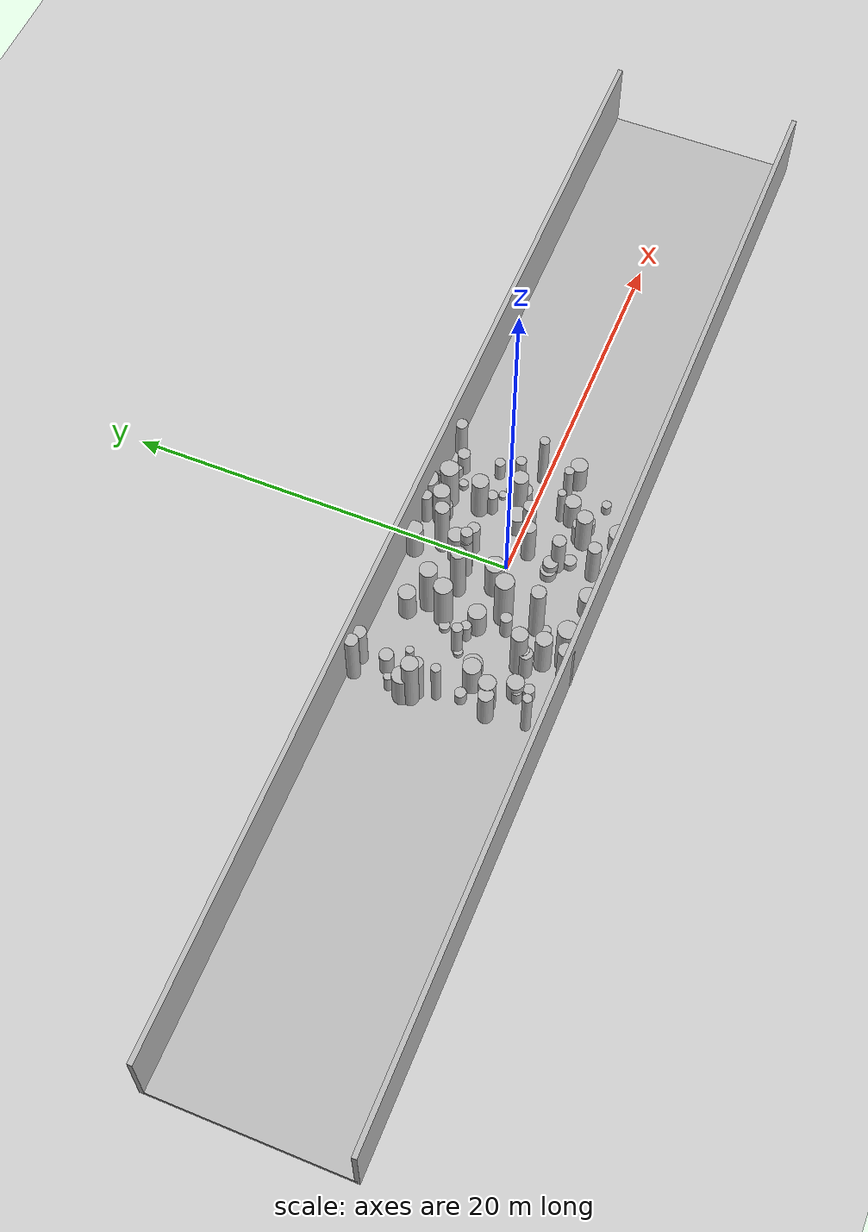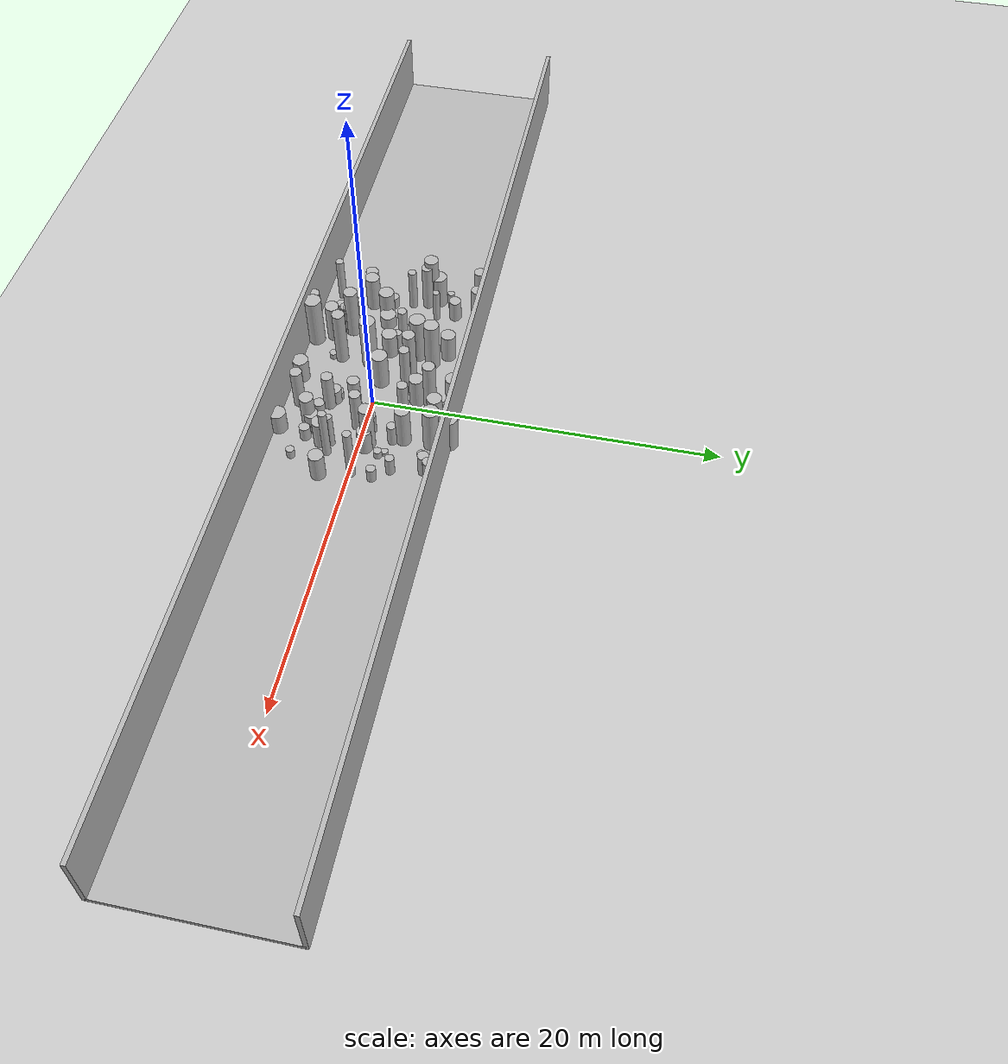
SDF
<sdf version="1.4">
 <world name="default">
  <include><uri>model://ground_plane</uri></include>
  <include><uri>model://sun</uri></include>
  <model name="forest">
   <static>true</static>
   <link name="cylinder0">
    <pose>3.4168227689153774 -3.0006204460932207 0.5657098314745399 0 0 0</pose>
    <visual name="visual">
     <geometry>
      <cylinder><radius>0.3139130072410652</radius><length>1.1314196629490798</length></cylinder>
     </geometry>
    </visual>
    <collision name="collision">
     <geometry>
      <cylinder><radius>0.3139130072410652</radius><length>1.1314196629490798</length></cylinder>
     </geometry>
     <max_contacts>0</max_contacts>
    </collision>
   </link>
   <link name="cylinder4">
    <pose>-7.65580942676058 -0.6139596045711126 0.5071746467248583 0 0 0</pose>
    <visual name="visual">
     <geometry>
      <cylinder><radius>0.28486619734029595</radius><length>1.0143492934497167</length></cylinder>
     </geometry>
    </visual>
    <collision name="collision">
     <geometry>
      <cylinder><radius>0.28486619734029595</radius><length>1.0143492934497167</length></cylinder>
     </geometry>
     <max_contacts>0</max_contacts>
    </collision>
   </link>
   <link name="cylinder10">
    <pose>-3.9640936507708737 -4.494682512539475 1.7691035965591073 0 0 0</pose>
    <visual name="visual">
     <geometry>
      <cylinder><radius>0.4929012030094775</radius><length>3.5382071931182146</length></cylinder>
     </geometry>
    </visual>
    <collision name="collision">
     <geometry>
      <cylinder><radius>0.4929012030094775</radius><length>3.5382071931182146</length></cylinder>
     </geometry>
     <max_contacts>0</max_contacts>
    </collision>
   </link>
   <link name="cylinder11">
    <pose>4.119614725509109 4.248106895456525 0.49777550320334263 0 0 0</pose>
    <visual name="visual">
     <geometry>
      <cylinder><radius>0.26283163536728527</radius><length>0.9955510064066853</length></cylinder>
     </geometry>
    </visual>
    <collision name="collision">
     <geometry>
      <cylinder><radius>0.26283163536728527</radius><length>0.9955510064066853</length></cylinder>
     </geometry>
     <max_contacts>0</max_contacts>
    </collision>
   </link>
   <link name="cylinder12">
    <pose>2.429946723753762 4.331881481691408 1.3762242734643872 0 0 0</pose>
    <visual name="visual">
     <geometry>
      <cylinder><radius>0.25629783081989954</radius><length>2.7524485469287745</length></cylinder>
     </geometry>
    </visual>
    <collision name="collision">
     <geometry>
      <cylinder><radius>0.25629783081989954</radius><length>2.7524485469287745</length></cylinder>
     </geometry>
     <max_contacts>0</max_contacts>
    </collision>
   </link>
   <link name="cylinder13">
    <pose>1.6259678344600275 3.950482960120725 0.596414468972401 0 0 0</pose>
    <visual name="visual">
     <geometry>
      <cylinder><radius>0.39085373932413436</radius><length>1.192828937944802</length></cylinder>
     </geometry>
    </visual>
    <collision name="collision">
     <geometry>
      <cylinder><radius>0.39085373932413436</radius><length>1.192828937944802</length></cylinder>
     </geometry>
     <max_contacts>0</max_contacts>
    </collision>
   </link>
   <link name="cylinder15">
    <pose>-2.8014205256658613 -2.5870234065136155 1.965258638447553 0 0 0</pose>
    <visual name="visual">
     <geometry>
      <cylinder><radius>0.3665065091192464</radius><length>3.930517276895106</length></cylinder>
     </geometry>
    </visual>
    <collision name="collision">
     <geometry>
      <cylinder><radius>0.3665065091192464</radius><length>3.930517276895106</length></cylinder>
     </geometry>
     <max_contacts>0</max_contacts>
    </collision>
   </link>
   <link name="cylinder16">
    <pose>-8.509159303555986 2.010298377042754 1.2016192523146536 0 0 0</pose>
    <visual name="visual">
     <geometry>
      <cylinder><radius>0.47469551965957124</radius><length>2.403238504629307</length></cylinder>
     </geometry>
    </visual>
    <collision name="collision">
     <geometry>
      <cylinder><radius>0.47469551965957124</radius><length>2.403238504629307</length></cylinder>
     </geometry>
     <max_contacts>0</max_contacts>
    </collision>
   </link>
   <link name="cylinder17">
    <pose>2.537903652770435 4.062633075450542 1.5659248072147622 0 0 0</pose>
    <visual name="visual">
     <geometry>
      <cylinder><radius>0.4730240623787522</radius><length>3.1318496144295245</length></cylinder>
     </geometry>
    </visual>
    <collision name="collision">
     <geometry>
      <cylinder><radius>0.4730240623787522</radius><length>3.1318496144295245</length></cylinder>
     </geometry>
     <max_contacts>0</max_contacts>
    </collision>
   </link>
   <link name="cylinder19">
    <pose>-7.13813193123433 2.1475875548013645 1.2059995553341458 0 0 0</pose>
    <visual name="visual">
     <geometry>
      <cylinder><radius>0.2048496442567242</radius><length>2.4119991106682916</length></cylinder>
     </geometry>
    </visual>
    <collision name="collision">
     <geometry>
      <cylinder><radius>0.2048496442567242</radius><length>2.4119991106682916</length></cylinder>
     </geometry>
     <max_contacts>0</max_contacts>
    </collision>
   </link>
   <link name="cylinder23">
    <pose>5.432612022886481 0.19492101263265926 1.8601651168344884 0 0 0</pose>
    <visual name="visual">
     <geometry>
      <cylinder><radius>0.2423647207048519</radius><length>3.7203302336689767</length></cylinder>
     </geometry>
    </visual>
    <collision name="collision">
     <geometry>
      <cylinder><radius>0.2423647207048519</radius><length>3.7203302336689767</length></cylinder>
     </geometry>
     <max_contacts>0</max_contacts>
    </collision>
   </link>
   <link name="cylinder26">
    <pose>5.527947056634009 1.3798075787001238 0.576673698230328 0 0 0</pose>
    <visual name="visual">
     <geometry>
      <cylinder><radius>0.2649422925226506</radius><length>1.153347396460656</length></cylinder>
     </geometry>
    </visual>
    <collision name="collision">
     <geometry>
      <cylinder><radius>0.2649422925226506</radius><length>1.153347396460656</length></cylinder>
     </geometry>
     <max_contacts>0</max_contacts>
    </collision>
   </link>
   <link name="cylinder27">
    <pose>0.30530906758772147 1.8873040653429154 1.1403596677238335 0 0 0</pose>
    <visual name="visual">
     <geometry>
      <cylinder><radius>0.30975460058401943</radius><length>2.280719335447667</length></cylinder>
     </geometry>
    </visual>
    <collision name="collision">
     <geometry>
      <cylinder><radius>0.30975460058401943</radius><length>2.280719335447667</length></cylinder>
     </geometry>
     <max_contacts>0</max_contacts>
    </collision>
   </link>
   <link name="cylinder30">
    <pose>-4.834168019107949 -4.76297067830262 1.612533425758893 0 0 0</pose>
    <visual name="visual">
     <geometry>
      <cylinder><radius>0.3931359872802575</radius><length>3.225066851517786</length></cylinder>
     </geometry>
    </visual>
    <collision name="collision">
     <geometry>
      <cylinder><radius>0.3931359872802575</radius><length>3.225066851517786</length></cylinder>
     </geometry>
     <max_contacts>0</max_contacts>
    </collision>
   </link>
   <link name="cylinder31">
    <pose>4.879031803466521 -3.425241943745214 0.41731307399969575 0 0 0</pose>
    <visual name="visual">
     <geometry>
      <cylinder><radius>0.23636158090995715</radius><length>0.8346261479993915</length></cylinder>
     </geometry>
    </visual>
    <collision name="collision">
     <geometry>
      <cylinder><radius>0.23636158090995715</radius><length>0.8346261479993915</length></cylinder>
     </geometry>
     <max_contacts>0</max_contacts>
    </collision>
   </link>
   <link name="cylinder33">
    <pose>-8.314321326137335 2.1344865203644954 1.0239917402976537 0 0 0</pose>
    <visual name="visual">
     <geometry>
      <cylinder><radius>0.22889207087869748</radius><length>2.0479834805953074</length></cylinder>
     </geometry>
    </visual>
    <collision name="collision">
     <geometry>
      <cylinder><radius>0.22889207087869748</radius><length>2.0479834805953074</length></cylinder>
     </geometry>
     <max_contacts>0</max_contacts>
    </collision>
   </link>
   <link name="cylinder36">
    <pose>0.2807022514431097 -2.0518586225310873 0.41371098489673686 0 0 0</pose>
    <visual name="visual">
     <geometry>
      <cylinder><radius>0.3976080216409922</radius><length>0.8274219697934737</length></cylinder>
     </geometry>
    </visual>
    <collision name="collision">
     <geometry>
      <cylinder><radius>0.3976080216409922</radius><length>0.8274219697934737</length></cylinder>
     </geometry>
     <max_contacts>0</max_contacts>
    </collision>
   </link>
   <link name="cylinder37">
    <pose>-3.8607344618718216 1.798230171711456 1.6737267998288308 0 0 0</pose>
    <visual name="visual">
     <geometry>
      <cylinder><radius>0.4647667166601855</radius><length>3.3474535996576615</length></cylinder>
     </geometry>
    </visual>
    <collision name="collision">
     <geometry>
      <cylinder><radius>0.4647667166601855</radius><length>3.3474535996576615</length></cylinder>
     </geometry>
     <max_contacts>0</max_contacts>
    </collision>
   </link>
   <link name="cylinder38">
    <pose>-0.8014173717320894 4.576177597131219 1.1198457528946701 0 0 0</pose>
    <visual name="visual">
     <geometry><cylinder><radius>0.44384524996406</radius><length>2.2396915057893403</length></cylinder></geometry>
    </visual>
    <collision name="collision">
     <geometry><cylinder><radius>0.44384524996406</radius><length>2.2396915057893403</length></cylinder></geometry>
     <max_contacts>0</max_contacts>
    </collision>
   </link>
   <link name="cylinder40">
    <pose>4.509219674056563 4.077539946630672 0.853091718121875 0 0 0</pose>
    <visual name="visual">
     <geometry>
      <cylinder><radius>0.32271097277579086</radius><length>1.70618343624375</length></cylinder>
     </geometry>
    </visual>
    <collision name="collision">
     <geometry>
      <cylinder><radius>0.32271097277579086</radius><length>1.70618343624375</length></cylinder>
     </geometry>
     <max_contacts>0</max_contacts>
    </collision>
   </link>
   <link name="cylinder41">
    <pose>1.2245320372545265 -2.8336640941562754 0.3683639810047978 0 0 0</pose>
    <visual name="visual">
     <geometry>
      <cylinder><radius>0.327157093566002</radius><length>0.7367279620095956</length></cylinder>
     </geometry>
    </visual>
    <collision name="collision">
     <geometry>
      <cylinder><radius>0.327157093566002</radius><length>0.7367279620095956</length></cylinder>
     </geometry>
     <max_contacts>0</max_contacts>
    </collision>
   </link>
   <link name="cylinder42">
    <pose>-4.168211580672331 3.539522852405357 1.0555643035714661 0 0 0</pose>
    <visual name="visual">
     <geometry>
      <cylinder><radius>0.4317310562778898</radius><length>2.1111286071429323</length></cylinder>
     </geometry>
    </visual>
    <collision name="collision">
     <geometry>
      <cylinder><radius>0.4317310562778898</radius><length>2.1111286071429323</length></cylinder>
     </geometry>
     <max_contacts>0</max_contacts>
    </collision>
   </link>
   <link name="cylinder46">
    <pose>-2.786542864333864 -3.1168611972613824 0.3127594682873085 0 0 0</pose>
    <visual name="visual">
     <geometry>
      <cylinder><radius>0.23314054018545585</radius><length>0.625518936574617</length></cylinder>
     </geometry>
    </visual>
    <collision name="collision">
     <geometry>
      <cylinder><radius>0.23314054018545585</radius><length>0.625518936574617</length></cylinder>
     </geometry>
     <max_contacts>0</max_contacts>
    </collision>
   </link>
   <link name="cylinder48">
    <pose>-3.405470062892384 2.7421743650802366 1.7738745624559829 0 0 0</pose>
    <visual name="visual">
     <geometry>
      <cylinder><radius>0.44209173592323403</radius><length>3.5477491249119657</length></cylinder>
     </geometry>
    </visual>
    <collision name="collision">
     <geometry>
      <cylinder><radius>0.44209173592323403</radius><length>3.5477491249119657</length></cylinder>
     </geometry>
     <max_contacts>0</max_contacts>
    </collision>
   </link>
   <link name="cylinder49">
    <pose>3.7187804958886446 1.644182984014714 0.2393058109263186 0 0 0</pose>
    <visual name="visual">
     <geometry>
      <cylinder><radius>0.20761023267116188</radius><length>0.4786116218526372</length></cylinder>
     </geometry>
    </visual>
    <collision name="collision">
     <geometry>
      <cylinder><radius>0.20761023267116188</radius><length>0.4786116218526372</length></cylinder>
     </geometry>
     <max_contacts>0</max_contacts>
    </collision>
   </link>
   <link name="cylinder50">
    <pose>-8.241870612352987 4.616287864682828 1.7652205598682105 0 0 0</pose>
    <visual name="visual">
     <geometry>
      <cylinder><radius>0.3414705632696613</radius><length>3.530441119736421</length></cylinder>
     </geometry>
    </visual>
    <collision name="collision">
     <geometry>
      <cylinder><radius>0.3414705632696613</radius><length>3.530441119736421</length></cylinder>
     </geometry>
     <max_contacts>0</max_contacts>
    </collision>
   </link>
   <link name="cylinder51">
    <pose>3.0849625496992488 -4.646589702898501 0.7969033168566544 0 0 0</pose>
    <visual name="visual">
     <geometry>
      <cylinder><radius>0.47713429524977524</radius><length>1.5938066337133088</length></cylinder>
     </geometry>
    </visual>
    <collision name="collision">
     <geometry>
      <cylinder><radius>0.47713429524977524</radius><length>1.5938066337133088</length></cylinder>
     </geometry>
     <max_contacts>0</max_contacts>
    </collision>
   </link>
   <link name="cylinder53">
    <pose>-1.4025854770964337 0.1271315581665391 1.2750346920651203 0 0 0</pose>
    <visual name="visual">
     <geometry>
      <cylinder><radius>0.4735796043228775</radius><length>2.5500693841302406</length></cylinder>
     </geometry>
    </visual>
    <collision name="collision">
     <geometry>
      <cylinder><radius>0.4735796043228775</radius><length>2.5500693841302406</length></cylinder>
     </geometry>
     <max_contacts>0</max_contacts>
    </collision>
   </link>
   <link name="cylinder59">
    <pose>4.27891711785789 -1.5129729196351138 1.8169500176617168 0 0 0</pose>
    <visual name="visual">
     <geometry>
      <cylinder><radius>0.23445608639623608</radius><length>3.6339000353234336</length></cylinder>
     </geometry>
    </visual>
    <collision name="collision">
     <geometry>
      <cylinder><radius>0.23445608639623608</radius><length>3.6339000353234336</length></cylinder>
     </geometry>
     <max_contacts>0</max_contacts>
    </collision>
   </link>
   <link name="cylinder61">
    <pose>1.0588627270553594 -4.0436026388371396 1.4500712544282837 0 0 0</pose>
    <visual name="visual">
     <geometry>
      <cylinder><radius>0.3393122257825558</radius><length>2.9001425088565673</length></cylinder>
     </geometry>
    </visual>
    <collision name="collision">
     <geometry>
      <cylinder><radius>0.3393122257825558</radius><length>2.9001425088565673</length></cylinder>
     </geometry>
     <max_contacts>0</max_contacts>
    </collision>
   </link>
   <link name="cylinder63">
    <pose>-7.81830034674989 -3.96246343868367 1.5871151356668565 0 0 0</pose>
    <visual name="visual">
     <geometry>
      <cylinder><radius>0.23331854728300358</radius><length>3.174230271333713</length></cylinder>
     </geometry>
    </visual>
    <collision name="collision">
     <geometry>
      <cylinder><radius>0.23331854728300358</radius><length>3.174230271333713</length></cylinder>
     </geometry>
     <max_contacts>0</max_contacts>
    </collision>
   </link>
   <link name="cylinder65">
    <pose>-8.311809174564782 2.8007965697433077 0.670392578374513 0 0 0</pose>
    <visual name="visual">
     <geometry>
      <cylinder><radius>0.2066680580027065</radius><length>1.340785156749026</length></cylinder>
     </geometry>
    </visual>
    <collision name="collision">
     <geometry>
      <cylinder><radius>0.2066680580027065</radius><length>1.340785156749026</length></cylinder>
     </geometry>
     <max_contacts>0</max_contacts>
    </collision>
   </link>
   <link name="cylinder69">
    <pose>0.8977024724262535 -2.301481938823 1.36658357312586 0 0 0</pose>
    <visual name="visual">
     <geometry><cylinder><radius>0.3370675886313821</radius><length>2.73316714625172</length></cylinder></geometry>
    </visual>
    <collision name="collision">
     <geometry><cylinder><radius>0.3370675886313821</radius><length>2.73316714625172</length></cylinder></geometry>
     <max_contacts>0</max_contacts>
    </collision>
   </link>
   <link name="cylinder70">
    <pose>-6.397800764020982 -2.899767563911607 0.7355151845437955 0 0 0</pose>
    <visual name="visual">
     <geometry>
      <cylinder><radius>0.42835825013344647</radius><length>1.471030369087591</length></cylinder>
     </geometry>
    </visual>
    <collision name="collision">
     <geometry>
      <cylinder><radius>0.42835825013344647</radius><length>1.471030369087591</length></cylinder>
     </geometry>
     <max_contacts>0</max_contacts>
    </collision>
   </link>
   <link name="cylinder75">
    <pose>-6.749490382746476 -0.8293490692678436 1.1113797536738117 0 0 0</pose>
    <visual name="visual">
     <geometry>
      <cylinder><radius>0.45238148765169817</radius><length>2.2227595073476234</length></cylinder>
     </geometry>
    </visual>
    <collision name="collision">
     <geometry>
      <cylinder><radius>0.45238148765169817</radius><length>2.2227595073476234</length></cylinder>
     </geometry>
     <max_contacts>0</max_contacts>
    </collision>
   </link>
   <link name="cylinder82">
    <pose>-7.377317613793856 4.605964793982389 1.4357350175502868 0 0 0</pose>
    <visual name="visual">
     <geometry>
      <cylinder><radius>0.34700452912200364</radius><length>2.8714700351005735</length></cylinder>
     </geometry>
    </visual>
    <collision name="collision">
     <geometry>
      <cylinder><radius>0.34700452912200364</radius><length>2.8714700351005735</length></cylinder>
     </geometry>
     <max_contacts>0</max_contacts>
    </collision>
   </link>
   <link name="cylinder87">
    <pose>5.546138668723188 4.619650474758611 1.3127551031969038 0 0 0</pose>
    <visual name="visual">
     <geometry>
      <cylinder><radius>0.3052132891249326</radius><length>2.6255102063938076</length></cylinder>
     </geometry>
    </visual>
    <collision name="collision">
     <geometry>
      <cylinder><radius>0.3052132891249326</radius><length>2.6255102063938076</length></cylinder>
     </geometry>
     <max_contacts>0</max_contacts>
    </collision>
   </link>
   <link name="cylinder89">
    <pose>3.6107220959592112 -1.4479142739139004 1.2920930081545208 0 0 0</pose>
    <visual name="visual">
     <geometry>
      <cylinder><radius>0.21086694698652492</radius><length>2.5841860163090415</length></cylinder>
     </geometry>
    </visual>
    <collision name="collision">
     <geometry>
      <cylinder><radius>0.21086694698652492</radius><length>2.5841860163090415</length></cylinder>
     </geometry>
     <max_contacts>0</max_contacts>
    </collision>
   </link>
   <link name="cylinder92">
    <pose>-3.7743865474174356 0.08616136112998607 0.9405995916820917 0 0 0</pose>
    <visual name="visual">
     <geometry>
      <cylinder><radius>0.44745407672025383</radius><length>1.8811991833641835</length></cylinder>
     </geometry>
    </visual>
    <collision name="collision">
     <geometry>
      <cylinder><radius>0.44745407672025383</radius><length>1.8811991833641835</length></cylinder>
     </geometry>
     <max_contacts>0</max_contacts>
    </collision>
   </link>
   <link name="cylinder99">
    <pose>-7.417820621563415 3.2418723872812585 0.8294233416865953 0 0 0</pose>
    <visual name="visual">
     <geometry>
      <cylinder><radius>0.3528564626015005</radius><length>1.6588466833731905</length></cylinder>
     </geometry>
    </visual>
    <collision name="collision">
     <geometry>
      <cylinder><radius>0.3528564626015005</radius><length>1.6588466833731905</length></cylinder>
     </geometry>
     <max_contacts>0</max_contacts>
    </collision>
   </link>
   <link name="cylinder102">
    <pose>2.5697944292123083 2.4596847540539946 1.4324231828047114 0 0 0</pose>
    <visual name="visual">
     <geometry>
      <cylinder><radius>0.4250552553978694</radius><length>2.8648463656094227</length></cylinder>
     </geometry>
    </visual>
    <collision name="collision">
     <geometry>
      <cylinder><radius>0.4250552553978694</radius><length>2.8648463656094227</length></cylinder>
     </geometry>
     <max_contacts>0</max_contacts>
    </collision>
   </link>
   <link name="cylinder103">
    <pose>-1.0232561627448291 1.7543652212036456 1.6014671290402784 0 0 0</pose>
    <visual name="visual">
     <geometry>
      <cylinder><radius>0.29479621375523063</radius><length>3.202934258080557</length></cylinder>
     </geometry>
    </visual>
    <collision name="collision">
     <geometry>
      <cylinder><radius>0.29479621375523063</radius><length>3.202934258080557</length></cylinder>
     </geometry>
     <max_contacts>0</max_contacts>
    </collision>
   </link>
   <link name="cylinder104">
    <pose>-2.159612474449581 1.7227427197972744 1.9095209884416153 0 0 0</pose>
    <visual name="visual">
     <geometry>
      <cylinder><radius>0.37065098080168496</radius><length>3.8190419768832307</length></cylinder>
     </geometry>
    </visual>
    <collision name="collision">
     <geometry>
      <cylinder><radius>0.37065098080168496</radius><length>3.8190419768832307</length></cylinder>
     </geometry>
     <max_contacts>0</max_contacts>
    </collision>
   </link>
   <link name="cylinder105">
    <pose>-8.03930685058453 -2.0236601635128415 1.257552211323354 0 0 0</pose>
    <visual name="visual">
     <geometry>
      <cylinder><radius>0.37865590920981684</radius><length>2.515104422646708</length></cylinder>
     </geometry>
    </visual>
    <collision name="collision">
     <geometry>
      <cylinder><radius>0.37865590920981684</radius><length>2.515104422646708</length></cylinder>
     </geometry>
     <max_contacts>0</max_contacts>
    </collision>
   </link>
   <link name="cylinder113">
    <pose>-7.884272590338721 0.5252000323935881 1.5319820713095194 0 0 0</pose>
    <visual name="visual">
     <geometry>
      <cylinder><radius>0.2408161999045945</radius><length>3.0639641426190387</length></cylinder>
     </geometry>
    </visual>
    <collision name="collision">
     <geometry>
      <cylinder><radius>0.2408161999045945</radius><length>3.0639641426190387</length></cylinder>
     </geometry>
     <max_contacts>0</max_contacts>
    </collision>
   </link>
   <link name="cylinder117">
    <pose>-0.08591459138701651 3.3816282865678033 1.887869339829943 0 0 0</pose>
    <visual name="visual">
     <geometry>
      <cylinder><radius>0.36484913383346007</radius><length>3.775738679659886</length></cylinder>
     </geometry>
    </visual>
    <collision name="collision">
     <geometry>
      <cylinder><radius>0.36484913383346007</radius><length>3.775738679659886</length></cylinder>
     </geometry>
     <max_contacts>0</max_contacts>
    </collision>
   </link>
   <link name="cylinder127">
    <pose>2.7970796674860523 -2.761019449462289 0.8298989125633716 0 0 0</pose>
    <visual name="visual">
     <geometry>
      <cylinder><radius>0.400230912245756</radius><length>1.6597978251267431</length></cylinder>
     </geometry>
    </visual>
    <collision name="collision">
     <geometry>
      <cylinder><radius>0.400230912245756</radius><length>1.6597978251267431</length></cylinder>
     </geometry>
     <max_contacts>0</max_contacts>
    </collision>
   </link>
   <link name="cylinder132">
    <pose>-7.457209574347186 -1.8636794208831353 1.2919076893888533 0 0 0</pose>
    <visual name="visual">
     <geometry>
      <cylinder><radius>0.4248737774600998</radius><length>2.5838153787777065</length></cylinder>
     </geometry>
    </visual>
    <collision name="collision">
     <geometry>
      <cylinder><radius>0.4248737774600998</radius><length>2.5838153787777065</length></cylinder>
     </geometry>
     <max_contacts>0</max_contacts>
    </collision>
   </link>
   <link name="cylinder134">
    <pose>-6.3469014425690915 -3.5657176343595873 0.5805557525044526 0 0 0</pose>
    <visual name="visual">
     <geometry>
      <cylinder><radius>0.2803547403387267</radius><length>1.1611115050089051</length></cylinder>
     </geometry>
    </visual>
    <collision name="collision">
     <geometry>
      <cylinder><radius>0.2803547403387267</radius><length>1.1611115050089051</length></cylinder>
     </geometry>
     <max_contacts>0</max_contacts>
    </collision>
   </link>
   <link name="cylinder135">
    <pose>1.1605739362198833 4.735082454034782 1.1548241884253887 0 0 0</pose>
    <visual name="visual">
     <geometry>
      <cylinder><radius>0.2896940093755044</radius><length>2.3096483768507774</length></cylinder>
     </geometry>
    </visual>
    <collision name="collision">
     <geometry>
      <cylinder><radius>0.2896940093755044</radius><length>2.3096483768507774</length></cylinder>
     </geometry>
     <max_contacts>0</max_contacts>
    </collision>
   </link>
   <link name="cylinder137">
    <pose>-5.210249459232173 0.5389736373579765 1.2112549506042254 0 0 0</pose>
    <visual name="visual">
     <geometry>
      <cylinder><radius>0.2690333037356166</radius><length>2.4225099012084508</length></cylinder>
     </geometry>
    </visual>
    <collision name="collision">
     <geometry>
      <cylinder><radius>0.2690333037356166</radius><length>2.4225099012084508</length></cylinder>
     </geometry>
     <max_contacts>0</max_contacts>
    </collision>
   </link>
   <link name="cylinder141">
    <pose>-6.651862156264805 -3.060680856737228 0.5683006689478236 0 0 0</pose>
    <visual name="visual">
     <geometry>
      <cylinder><radius>0.2493026553200704</radius><length>1.1366013378956472</length></cylinder>
     </geometry>
    </visual>
    <collision name="collision">
     <geometry>
      <cylinder><radius>0.2493026553200704</radius><length>1.1366013378956472</length></cylinder>
     </geometry>
     <max_contacts>0</max_contacts>
    </collision>
   </link>
   <link name="cylinder145">
    <pose>-0.8705940531485545 -4.493526789499416 0.871223794144074 0 0 0</pose>
    <visual name="visual">
     <geometry>
      <cylinder><radius>0.4577375078875514</radius><length>1.742447588288148</length></cylinder>
     </geometry>
    </visual>
    <collision name="collision">
     <geometry>
      <cylinder><radius>0.4577375078875514</radius><length>1.742447588288148</length></cylinder>
     </geometry>
     <max_contacts>0</max_contacts>
    </collision>
   </link>
   <link name="cylinder146">
    <pose>3.6454867856073 -2.0252278537035986 1.0471702683180926 0 0 0</pose>
    <visual name="visual">
     <geometry>
      <cylinder><radius>0.40837535454291773</radius><length>2.094340536636185</length></cylinder>
     </geometry>
    </visual>
    <collision name="collision">
     <geometry>
      <cylinder><radius>0.40837535454291773</radius><length>2.094340536636185</length></cylinder>
     </geometry>
     <max_contacts>0</max_contacts>
    </collision>
   </link>
   <link name="cylinder148">
    <pose>-0.36530755843391916 2.537790884200213 1.1211385099275213 0 0 0</pose>
    <visual name="visual">
     <geometry>
      <cylinder><radius>0.426414904117093</radius><length>2.2422770198550426</length></cylinder>
     </geometry>
    </visual>
    <collision name="collision">
     <geometry>
      <cylinder><radius>0.426414904117093</radius><length>2.2422770198550426</length></cylinder>
     </geometry>
     <max_contacts>0</max_contacts>
    </collision>
   </link>
   <link name="cylinder156">
    <pose>-4.37136462912957 1.524039885234581 0.28475817397429154 0 0 0</pose>
    <visual name="visual">
     <geometry>
      <cylinder><radius>0.2701853015209046</radius><length>0.5695163479485831</length></cylinder>
     </geometry>
    </visual>
    <collision name="collision">
     <geometry>
      <cylinder><radius>0.2701853015209046</radius><length>0.5695163479485831</length></cylinder>
     </geometry>
     <max_contacts>0</max_contacts>
    </collision>
   </link>
   <link name="cylinder163">
    <pose>-5.142292959594151 -2.899732285157748 1.0834498248683262 0 0 0</pose>
    <visual name="visual">
     <geometry>
      <cylinder><radius>0.3427053749803187</radius><length>2.1668996497366524</length></cylinder>
     </geometry>
    </visual>
    <collision name="collision">
     <geometry>
      <cylinder><radius>0.3427053749803187</radius><length>2.1668996497366524</length></cylinder>
     </geometry>
     <max_contacts>0</max_contacts>
    </collision>
   </link>
   <link name="cylinder164">
    <pose>2.0686912889072744 -0.3367365368046862 1.4968842834781955 0 0 0</pose>
    <visual name="visual">
     <geometry>
      <cylinder><radius>0.32750952017336665</radius><length>2.993768566956391</length></cylinder>
     </geometry>
    </visual>
    <collision name="collision">
     <geometry>
      <cylinder><radius>0.32750952017336665</radius><length>2.993768566956391</length></cylinder>
     </geometry>
     <max_contacts>0</max_contacts>
    </collision>
   </link>
   <link name="cylinder166">
    <pose>-6.016930239331618 -0.5924867818360955 0.5639758199014845 0 0 0</pose>
    <visual name="visual">
     <geometry>
      <cylinder><radius>0.47781775633438206</radius><length>1.127951639802969</length></cylinder>
     </geometry>
    </visual>
    <collision name="collision">
     <geometry>
      <cylinder><radius>0.47781775633438206</radius><length>1.127951639802969</length></cylinder>
     </geometry>
     <max_contacts>0</max_contacts>
    </collision>
   </link>
   <link name="cylinder168">
    <pose>-3.454764619476407 -1.2803355734580277 0.8416423629182779 0 0 0</pose>
    <visual name="visual">
     <geometry>
      <cylinder><radius>0.2894505812019345</radius><length>1.6832847258365558</length></cylinder>
     </geometry>
    </visual>
    <collision name="collision">
     <geometry>
      <cylinder><radius>0.2894505812019345</radius><length>1.6832847258365558</length></cylinder>
     </geometry>
     <max_contacts>0</max_contacts>
    </collision>
   </link>
   <link name="cylinder177">
    <pose>0.46916878948322704 -2.073651435020313 0.627538057101592 0 0 0</pose>
    <visual name="visual">
     <geometry>
      <cylinder><radius>0.37005464955442624</radius><length>1.255076114203184</length></cylinder>
     </geometry>
    </visual>
    <collision name="collision">
     <geometry>
      <cylinder><radius>0.37005464955442624</radius><length>1.255076114203184</length></cylinder>
     </geometry>
     <max_contacts>0</max_contacts>
    </collision>
   </link>
   <link name="cylinder181">
    <pose>3.548101067952441 0.4906255614732844 0.8989743710401812 0 0 0</pose>
    <visual name="visual">
     <geometry>
      <cylinder><radius>0.41609985706117103</radius><length>1.7979487420803624</length></cylinder>
     </geometry>
    </visual>
    <collision name="collision">
     <geometry>
      <cylinder><radius>0.41609985706117103</radius><length>1.7979487420803624</length></cylinder>
     </geometry>
     <max_contacts>0</max_contacts>
    </collision>
   </link>
   <link name="cylinder182">
    <pose>-5.037984737913131 -2.5119347276989323 1.782618852061456 0 0 0</pose>
    <visual name="visual">
     <geometry>
      <cylinder><radius>0.40362280753712243</radius><length>3.565237704122912</length></cylinder>
     </geometry>
    </visual>
    <collision name="collision">
     <geometry>
      <cylinder><radius>0.40362280753712243</radius><length>3.565237704122912</length></cylinder>
     </geometry>
     <max_contacts>0</max_contacts>
    </collision>
   </link>
   <link name="cylinder183">
    <pose>2.1494539914913773 4.998829013254689 1.1459283878528728 0 0 0</pose>
    <visual name="visual">
     <geometry>
      <cylinder><radius>0.4813465642660721</radius><length>2.2918567757057455</length></cylinder>
     </geometry>
    </visual>
    <collision name="collision">
     <geometry>
      <cylinder><radius>0.4813465642660721</radius><length>2.2918567757057455</length></cylinder>
     </geometry>
     <max_contacts>0</max_contacts>
    </collision>
   </link>
   <link name="cylinder185">
    <pose>5.8429494337893395 -1.5601936108089887 0.991817555021052 0 0 0</pose>
    <visual name="visual">
     <geometry>
      <cylinder><radius>0.4299155573009106</radius><length>1.983635110042104</length></cylinder>
     </geometry>
    </visual>
    <collision name="collision">
     <geometry>
      <cylinder><radius>0.4299155573009106</radius><length>1.983635110042104</length></cylinder>
     </geometry>
     <max_contacts>0</max_contacts>
    </collision>
   </link>
   <link name="cylinder190">
    <pose>2.617927881888498 -2.987128038334781 1.3720451859337017 0 0 0</pose>
    <visual name="visual">
     <geometry>
      <cylinder><radius>0.4029796789320015</radius><length>2.7440903718674035</length></cylinder>
     </geometry>
    </visual>
    <collision name="collision">
     <geometry>
      <cylinder><radius>0.4029796789320015</radius><length>2.7440903718674035</length></cylinder>
     </geometry>
     <max_contacts>0</max_contacts>
    </collision>
   </link>
   <link name="cylinder196">
    <pose>-5.412261240000721 0.40410927141178643 0.26377281413048265 0 0 0</pose>
    <visual name="visual">
     <geometry>
      <cylinder><radius>0.23208760899102446</radius><length>0.5275456282609653</length></cylinder>
     </geometry>
    </visual>
    <collision name="collision">
     <geometry>
      <cylinder><radius>0.23208760899102446</radius><length>0.5275456282609653</length></cylinder>
     </geometry>
     <max_contacts>0</max_contacts>
    </collision>
   </link>
   <link name="cylinder199">
    <pose>2.2617526833632624 0.3328937358755102 0.77516259366245 0 0 0</pose>
    <visual name="visual">
     <geometry><cylinder><radius>0.4769462566312007</radius><length>1.5503251873249</length></cylinder></geometry>
    </visual>
    <collision name="collision">
     <geometry><cylinder><radius>0.4769462566312007</radius><length>1.5503251873249</length></cylinder></geometry>
     <max_contacts>0</max_contacts>
    </collision>
   </link>
   <link name="cylinder204">
    <pose>-8.129776043627228 1.3968732854707717 1.693503701107608 0 0 0</pose>
    <visual name="visual">
     <geometry>
      <cylinder><radius>0.3283442336659892</radius><length>3.387007402215216</length></cylinder>
     </geometry>
    </visual>
    <collision name="collision">
     <geometry>
      <cylinder><radius>0.3283442336659892</radius><length>3.387007402215216</length></cylinder>
     </geometry>
     <max_contacts>0</max_contacts>
    </collision>
   </link>
   <link name="cylinder210">
    <pose>3.953199972012712 1.3197035828201358 0.3737836152193375 0 0 0</pose>
    <visual name="visual">
     <geometry>
      <cylinder><radius>0.22953435354059917</radius><length>0.747567230438675</length></cylinder>
     </geometry>
    </visual>
    <collision name="collision">
     <geometry>
      <cylinder><radius>0.22953435354059917</radius><length>0.747567230438675</length></cylinder>
     </geometry>
     <max_contacts>0</max_contacts>
    </collision>
   </link>
   <link name="cylinder211">
    <pose>1.3474276930225244 4.00093046174065 1.4175850853058718 0 0 0</pose>
    <visual name="visual">
     <geometry>
      <cylinder><radius>0.4303786503189273</radius><length>2.8351701706117436</length></cylinder>
     </geometry>
    </visual>
    <collision name="collision">
     <geometry>
      <cylinder><radius>0.4303786503189273</radius><length>2.8351701706117436</length></cylinder>
     </geometry>
     <max_contacts>0</max_contacts>
    </collision>
   </link>
   <link name="cylinder212">
    <pose>-4.40674596680503 0.3993737642802673 0.6942723485075561 0 0 0</pose>
    <visual name="visual">
     <geometry>
      <cylinder><radius>0.2610057658861786</radius><length>1.3885446970151123</length></cylinder>
     </geometry>
    </visual>
    <collision name="collision">
     <geometry>
      <cylinder><radius>0.2610057658861786</radius><length>1.3885446970151123</length></cylinder>
     </geometry>
     <max_contacts>0</max_contacts>
    </collision>
   </link>
   <link name="cylinder220">
    <pose>3.231603224364065 0.6108706275973645 1.6581537610687027 0 0 0</pose>
    <visual name="visual">
     <geometry>
      <cylinder><radius>0.39941603817015403</radius><length>3.3163075221374054</length></cylinder>
     </geometry>
    </visual>
    <collision name="collision">
     <geometry>
      <cylinder><radius>0.39941603817015403</radius><length>3.3163075221374054</length></cylinder>
     </geometry>
     <max_contacts>0</max_contacts>
    </collision>
   </link>
   <link name="cylinder221">
    <pose>1.001980714408223 -0.7116894028659839 1.4364422293851722 0 0 0</pose>
    <visual name="visual">
     <geometry>
      <cylinder><radius>0.34904294653460577</radius><length>2.8728844587703444</length></cylinder>
     </geometry>
    </visual>
    <collision name="collision">
     <geometry>
      <cylinder><radius>0.34904294653460577</radius><length>2.8728844587703444</length></cylinder>
     </geometry>
     <max_contacts>0</max_contacts>
    </collision>
   </link>
   <link name="cylinder223">
    <pose>-4.436227542156519 -3.5264657923726372 1.3957049861539852 0 0 0</pose>
    <visual name="visual">
     <geometry>
      <cylinder><radius>0.4128774372019979</radius><length>2.7914099723079704</length></cylinder>
     </geometry>
    </visual>
    <collision name="collision">
     <geometry>
      <cylinder><radius>0.4128774372019979</radius><length>2.7914099723079704</length></cylinder>
     </geometry>
     <max_contacts>0</max_contacts>
    </collision>
   </link>
   <link name="cylinder224">
    <pose>3.532653772598689 3.698659319600152 0.30280150931395344 0 0 0</pose>
    <visual name="visual">
     <geometry>
      <cylinder><radius>0.23085440040479532</radius><length>0.6056030186279069</length></cylinder>
     </geometry>
    </visual>
    <collision name="collision">
     <geometry>
      <cylinder><radius>0.23085440040479532</radius><length>0.6056030186279069</length></cylinder>
     </geometry>
     <max_contacts>0</max_contacts>
    </collision>
   </link>
   <link name="cylinder228">
    <pose>-5.050120794824824 -2.7249606968400553 1.1015007874885379 0 0 0</pose>
    <visual name="visual">
     <geometry>
      <cylinder><radius>0.3135447016577711</radius><length>2.2030015749770757</length></cylinder>
     </geometry>
    </visual>
    <collision name="collision">
     <geometry>
      <cylinder><radius>0.3135447016577711</radius><length>2.2030015749770757</length></cylinder>
     </geometry>
     <max_contacts>0</max_contacts>
    </collision>
   </link>
   <link name="cylinder229">
    <pose>2.7839149343963037 1.8709607681768858 0.8255797367599158 0 0 0</pose>
    <visual name="visual">
     <geometry>
      <cylinder><radius>0.27459298743034427</radius><length>1.6511594735198316</length></cylinder>
     </geometry>
    </visual>
    <collision name="collision">
     <geometry>
      <cylinder><radius>0.27459298743034427</radius><length>1.6511594735198316</length></cylinder>
     </geometry>
     <max_contacts>0</max_contacts>
    </collision>
   </link>
   <link name="cylinder230">
    <pose>-0.9572013037491942 1.7618171885573108 1.920435971277987 0 0 0</pose>
    <visual name="visual">
     <geometry>
      <cylinder><radius>0.2932016021495269</radius><length>3.840871942555974</length></cylinder>
     </geometry>
    </visual>
    <collision name="collision">
     <geometry>
      <cylinder><radius>0.2932016021495269</radius><length>3.840871942555974</length></cylinder>
     </geometry>
     <max_contacts>0</max_contacts>
    </collision>
   </link>
   <link name="cylinder233">
    <pose>-8.460076511523308 1.5910729752359938 1.8707736169702003 0 0 0</pose>
    <visual name="visual">
     <geometry>
      <cylinder><radius>0.4144673901736544</radius><length>3.7415472339404006</length></cylinder>
     </geometry>
    </visual>
    <collision name="collision">
     <geometry>
      <cylinder><radius>0.4144673901736544</radius><length>3.7415472339404006</length></cylinder>
     </geometry>
     <max_contacts>0</max_contacts>
    </collision>
   </link>
   <link name="cylinder236">
    <pose>4.857443118639633 2.2630487280418414 0.7245890467054377 0 0 0</pose>
    <visual name="visual">
     <geometry>
      <cylinder><radius>0.2592067800999424</radius><length>1.4491780934108753</length></cylinder>
     </geometry>
    </visual>
    <collision name="collision">
     <geometry>
      <cylinder><radius>0.2592067800999424</radius><length>1.4491780934108753</length></cylinder>
     </geometry>
     <max_contacts>0</max_contacts>
    </collision>
   </link>
   <link name="cylinder249">
    <pose>-2.7726182662958827 -0.8798205652314683 1.8820721018466209 0 0 0</pose>
    <visual name="visual">
     <geometry>
      <cylinder><radius>0.4685333356760983</radius><length>3.7641442036932418</length></cylinder>
     </geometry>
    </visual>
    <collision name="collision">
     <geometry>
      <cylinder><radius>0.4685333356760983</radius><length>3.7641442036932418</length></cylinder>
     </geometry>
     <max_contacts>0</max_contacts>
    </collision>
   </link>
   <link name="cube0">
    <pose>0 5.0 2.0 0 0 0</pose>
    <visual name="visual"><geometry><box><size>60.0 0.25 4.0</size></box></geometry></visual>
    <collision name="collision">
     <geometry><box><size>60.0 0.25 4.0</size></box></geometry>
     <max_contacts>0</max_contacts>
    </collision>
   </link>
   <link name="cube1">
    <pose>0 -5.0 2.0 0 0 0</pose>
    <visual name="visual"><geometry><box><size>60.0 0.25 4.0</size></box></geometry></visual>
    <collision name="collision">
     <geometry><box><size>60.0 0.25 4.0</size></box></geometry>
     <max_contacts>0</max_contacts>
    </collision>
   </link>
   <link name="cube2">
    <pose>0 0 0.125 0 0 0</pose>
    <visual name="visual"><geometry><box><size>60.0 10 0.25</size></box></geometry></visual>
    <collision name="collision">
     <geometry><box><size>60.0 10 0.25</size></box></geometry>
     <max_contacts>0</max_contacts>
    </collision>
   </link>
  </model>
 </world>
</sdf>
